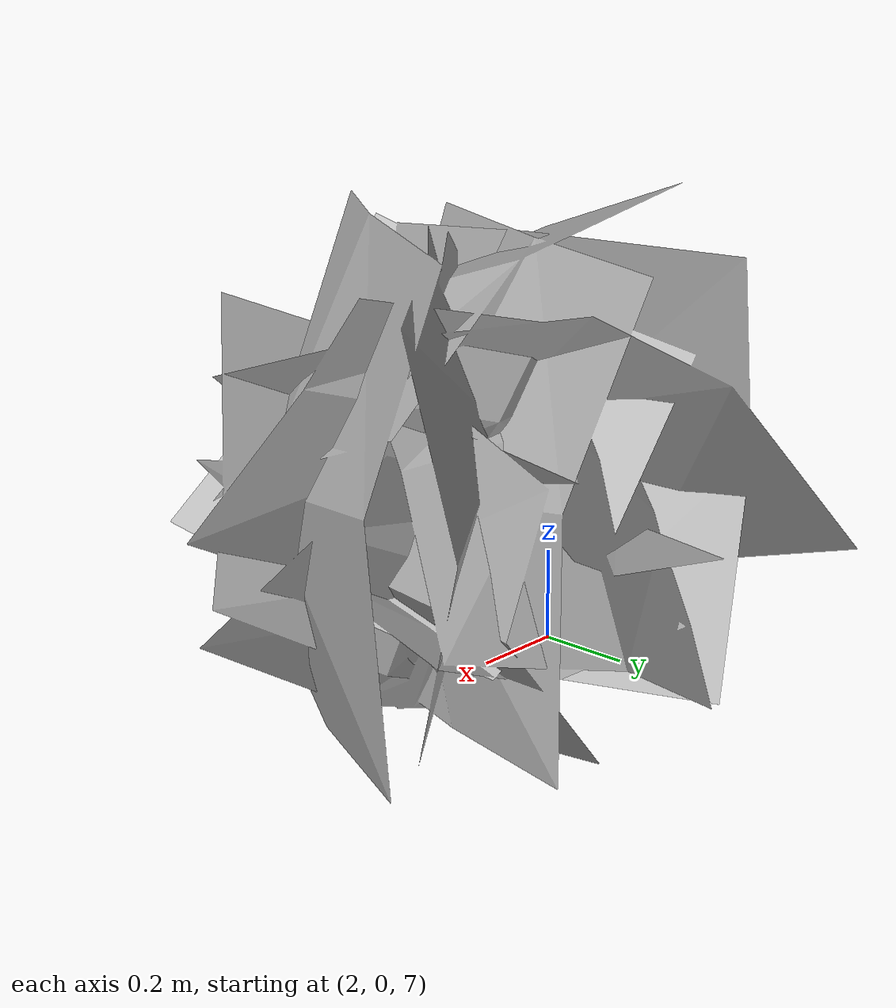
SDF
<?xml version="1.0" ?>
<sdf version="1.9">
  <model name="bush_01">
    <static>true</static>
    <link name="link">
      <collision name="collision">
        <pose>0 0 0.5 0 0 0</pose>
        <geometry>
          <box>
            <size>1.2 1.2 1.0</size>
          </box>
        </geometry>
      </collision>
      <visual name="visual">
        <geometry>
          <mesh>
            <uri>model://bush_01/meshes/Bush-01.obj</uri>
          </mesh>
        </geometry>
      </visual>
    </link>
  </model>
</sdf>
